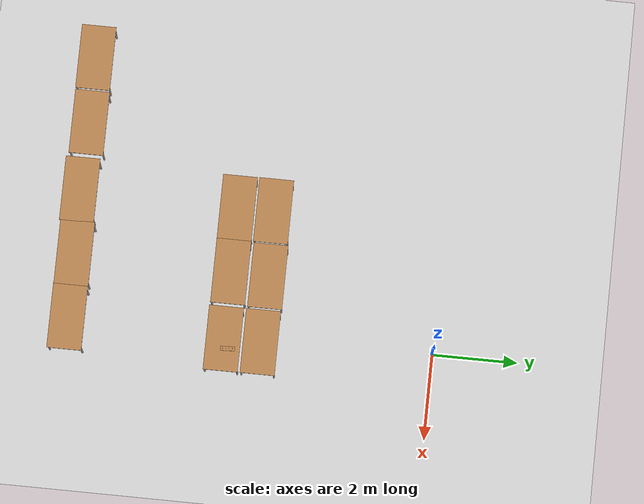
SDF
<sdf version="1.7">
 <world name="default">
  <model name="ground_plane">
   <static>1</static>
   <link name="link">
    <collision name="collision">
     <geometry><plane><normal>0 0 1</normal><size>100 100</size></plane></geometry>
     <surface>
      <contact><collide_bitmask>65535</collide_bitmask></contact>
      <friction><ode><mu>100</mu><mu2>50</mu2></ode></friction>
     </surface>
    </collision>
    <visual name="visual">
     <cast_shadows>0</cast_shadows>
     <geometry><plane><normal>0 0 1</normal><size>100 100</size></plane></geometry>
     <material>
      <script><uri>file://media/materials/scripts/gazebo.material</uri><name>Gazebo/Grey</name></script>
     </material>
    </visual>
   </link>
  </model>
  <model name="table_1">
   <static>1</static>
   <link name="link">
    <collision name="surface">
     <pose>0 0 1 0 -0 0</pose>
     <geometry><box><size>1.5 0.8 0.03</size></box></geometry>
     <surface><friction><ode><mu>0.6</mu><mu2>0.6</mu2></ode></friction></surface>
    </collision>
    <visual name="visual1">
     <pose>0 0 1 0 -0 0</pose>
     <geometry><box><size>1.5 0.8 0.03</size></box></geometry>
     <material>
      <script><uri>file://media/materials/scripts/gazebo.material</uri><name>Gazebo/Wood</name></script>
     </material>
    </visual>
    <collision name="front_left_leg">
     <pose>0.68 0.38 0.5 0 -0 0</pose>
     <geometry><cylinder><radius>0.02</radius><length>1</length></cylinder></geometry>
    </collision>
    <visual name="front_left_leg">
     <pose>0.68 0.38 0.5 0 -0 0</pose>
     <geometry><cylinder><radius>0.02</radius><length>1</length></cylinder></geometry>
     <material>
      <script><uri>file://media/materials/scripts/gazebo.material</uri><name>Gazebo/Grey</name></script>
     </material>
    </visual>
    <collision name="front_right_leg">
     <pose>0.68 -0.38 0.5 0 -0 0</pose>
     <geometry><cylinder><radius>0.02</radius><length>1</length></cylinder></geometry>
    </collision>
    <visual name="front_right_leg">
     <pose>0.68 -0.38 0.5 0 -0 0</pose>
     <geometry><cylinder><radius>0.02</radius><length>1</length></cylinder></geometry>
     <material>
      <script><uri>file://media/materials/scripts/gazebo.material</uri><name>Gazebo/Grey</name></script>
     </material>
    </visual>
    <collision name="back_right_leg">
     <pose>-0.68 -0.38 0.5 0 -0 0</pose>
     <geometry><cylinder><radius>0.02</radius><length>1</length></cylinder></geometry>
    </collision>
    <visual name="back_right_leg">
     <pose>-0.68 -0.38 0.5 0 -0 0</pose>
     <geometry><cylinder><radius>0.02</radius><length>1</length></cylinder></geometry>
     <material>
      <script><uri>file://media/materials/scripts/gazebo.material</uri><name>Gazebo/Grey</name></script>
     </material>
    </visual>
    <collision name="back_left_leg">
     <pose>-0.68 0.38 0.5 0 -0 0</pose>
     <geometry><cylinder><radius>0.02</radius><length>1</length></cylinder></geometry>
    </collision>
    <visual name="back_left_leg">
     <pose>-0.68 0.38 0.5 0 -0 0</pose>
     <geometry><cylinder><radius>0.02</radius><length>1</length></cylinder></geometry>
     <material>
      <script><uri>file://media/materials/scripts/gazebo.material</uri><name>Gazebo/Grey</name></script>
     </material>
    </visual>
   </link>
   <pose>0.208584 -3.97961 0 0 -0 0</pose>
  </model>
  <model name="table_2">
   <static>1</static>
   <link name="link">
    <collision name="surface">
     <pose>0 0 1 0 -0 0</pose>
     <geometry><box><size>1.5 0.8 0.03</size></box></geometry>
     <surface><friction><ode><mu>0.6</mu><mu2>0.6</mu2></ode></friction></surface>
    </collision>
    <visual name="visual1">
     <pose>0 0 1 0 -0 0</pose>
     <geometry><box><size>1.5 0.8 0.03</size></box></geometry>
     <material>
      <script><uri>file://media/materials/scripts/gazebo.material</uri><name>Gazebo/Wood</name></script>
     </material>
    </visual>
    <collision name="front_left_leg">
     <pose>0.68 0.38 0.5 0 -0 0</pose>
     <geometry><cylinder><radius>0.02</radius><length>1</length></cylinder></geometry>
    </collision>
    <visual name="front_left_leg">
     <pose>0.68 0.38 0.5 0 -0 0</pose>
     <geometry><cylinder><radius>0.02</radius><length>1</length></cylinder></geometry>
     <material>
      <script><uri>file://media/materials/scripts/gazebo.material</uri><name>Gazebo/Grey</name></script>
     </material>
    </visual>
    <collision name="front_right_leg">
     <pose>0.68 -0.38 0.5 0 -0 0</pose>
     <geometry><cylinder><radius>0.02</radius><length>1</length></cylinder></geometry>
    </collision>
    <visual name="front_right_leg">
     <pose>0.68 -0.38 0.5 0 -0 0</pose>
     <geometry><cylinder><radius>0.02</radius><length>1</length></cylinder></geometry>
     <material>
      <script><uri>file://media/materials/scripts/gazebo.material</uri><name>Gazebo/Grey</name></script>
     </material>
    </visual>
    <collision name="back_right_leg">
     <pose>-0.68 -0.38 0.5 0 -0 0</pose>
     <geometry><cylinder><radius>0.02</radius><length>1</length></cylinder></geometry>
    </collision>
    <visual name="back_right_leg">
     <pose>-0.68 -0.38 0.5 0 -0 0</pose>
     <geometry><cylinder><radius>0.02</radius><length>1</length></cylinder></geometry>
     <material>
      <script><uri>file://media/materials/scripts/gazebo.material</uri><name>Gazebo/Grey</name></script>
     </material>
    </visual>
    <collision name="back_left_leg">
     <pose>-0.68 0.38 0.5 0 -0 0</pose>
     <geometry><cylinder><radius>0.02</radius><length>1</length></cylinder></geometry>
    </collision>
    <visual name="back_left_leg">
     <pose>-0.68 0.38 0.5 0 -0 0</pose>
     <geometry><cylinder><radius>0.02</radius><length>1</length></cylinder></geometry>
     <material>
      <script><uri>file://media/materials/scripts/gazebo.material</uri><name>Gazebo/Grey</name></script>
     </material>
    </visual>
   </link>
   <pose>0.212852 -4.83597 0 0 -0 0</pose>
  </model>
  <model name="table_5">
   <static>1</static>
   <link name="link">
    <collision name="surface">
     <pose>0 0 1 0 -0 0</pose>
     <geometry><box><size>1.5 0.8 0.03</size></box></geometry>
     <surface><friction><ode><mu>0.6</mu><mu2>0.6</mu2></ode></friction></surface>
    </collision>
    <visual name="visual1">
     <pose>0 0 1 0 -0 0</pose>
     <geometry><box><size>1.5 0.8 0.03</size></box></geometry>
     <material>
      <script><uri>file://media/materials/scripts/gazebo.material</uri><name>Gazebo/Wood</name></script>
     </material>
    </visual>
    <collision name="front_left_leg">
     <pose>0.68 0.38 0.5 0 -0 0</pose>
     <geometry><cylinder><radius>0.02</radius><length>1</length></cylinder></geometry>
    </collision>
    <visual name="front_left_leg">
     <pose>0.68 0.38 0.5 0 -0 0</pose>
     <geometry><cylinder><radius>0.02</radius><length>1</length></cylinder></geometry>
     <material>
      <script><uri>file://media/materials/scripts/gazebo.material</uri><name>Gazebo/Grey</name></script>
     </material>
    </visual>
    <collision name="front_right_leg">
     <pose>0.68 -0.38 0.5 0 -0 0</pose>
     <geometry><cylinder><radius>0.02</radius><length>1</length></cylinder></geometry>
    </collision>
    <visual name="front_right_leg">
     <pose>0.68 -0.38 0.5 0 -0 0</pose>
     <geometry><cylinder><radius>0.02</radius><length>1</length></cylinder></geometry>
     <material>
      <script><uri>file://media/materials/scripts/gazebo.material</uri><name>Gazebo/Grey</name></script>
     </material>
    </visual>
    <collision name="back_right_leg">
     <pose>-0.68 -0.38 0.5 0 -0 0</pose>
     <geometry><cylinder><radius>0.02</radius><length>1</length></cylinder></geometry>
    </collision>
    <visual name="back_right_leg">
     <pose>-0.68 -0.38 0.5 0 -0 0</pose>
     <geometry><cylinder><radius>0.02</radius><length>1</length></cylinder></geometry>
     <material>
      <script><uri>file://media/materials/scripts/gazebo.material</uri><name>Gazebo/Grey</name></script>
     </material>
    </visual>
    <collision name="back_left_leg">
     <pose>-0.68 0.38 0.5 0 -0 0</pose>
     <geometry><cylinder><radius>0.02</radius><length>1</length></cylinder></geometry>
    </collision>
    <visual name="back_left_leg">
     <pose>-0.68 0.38 0.5 0 -0 0</pose>
     <geometry><cylinder><radius>0.02</radius><length>1</length></cylinder></geometry>
     <material>
      <script><uri>file://media/materials/scripts/gazebo.material</uri><name>Gazebo/Grey</name></script>
     </material>
    </visual>
   </link>
   <pose>0.063502 -8.46912 0 0 -0 0</pose>
  </model>
  <model name="table_6">
   <static>1</static>
   <link name="link">
    <collision name="surface">
     <pose>0 0 1 0 -0 0</pose>
     <geometry><box><size>1.5 0.8 0.03</size></box></geometry>
     <surface><friction><ode><mu>0.6</mu><mu2>0.6</mu2></ode></friction></surface>
    </collision>
    <visual name="visual1">
     <pose>0 0 1 0 -0 0</pose>
     <geometry><box><size>1.5 0.8 0.03</size></box></geometry>
     <material>
      <script><uri>file://media/materials/scripts/gazebo.material</uri><name>Gazebo/Wood</name></script>
     </material>
    </visual>
    <collision name="front_left_leg">
     <pose>0.68 0.38 0.5 0 -0 0</pose>
     <geometry><cylinder><radius>0.02</radius><length>1</length></cylinder></geometry>
    </collision>
    <visual name="front_left_leg">
     <pose>0.68 0.38 0.5 0 -0 0</pose>
     <geometry><cylinder><radius>0.02</radius><length>1</length></cylinder></geometry>
     <material>
      <script><uri>file://media/materials/scripts/gazebo.material</uri><name>Gazebo/Grey</name></script>
     </material>
    </visual>
    <collision name="front_right_leg">
     <pose>0.68 -0.38 0.5 0 -0 0</pose>
     <geometry><cylinder><radius>0.02</radius><length>1</length></cylinder></geometry>
    </collision>
    <visual name="front_right_leg">
     <pose>0.68 -0.38 0.5 0 -0 0</pose>
     <geometry><cylinder><radius>0.02</radius><length>1</length></cylinder></geometry>
     <material>
      <script><uri>file://media/materials/scripts/gazebo.material</uri><name>Gazebo/Grey</name></script>
     </material>
    </visual>
    <collision name="back_right_leg">
     <pose>-0.68 -0.38 0.5 0 -0 0</pose>
     <geometry><cylinder><radius>0.02</radius><length>1</length></cylinder></geometry>
    </collision>
    <visual name="back_right_leg">
     <pose>-0.68 -0.38 0.5 0 -0 0</pose>
     <geometry><cylinder><radius>0.02</radius><length>1</length></cylinder></geometry>
     <material>
      <script><uri>file://media/materials/scripts/gazebo.material</uri><name>Gazebo/Grey</name></script>
     </material>
    </visual>
    <collision name="back_left_leg">
     <pose>-0.68 0.38 0.5 0 -0 0</pose>
     <geometry><cylinder><radius>0.02</radius><length>1</length></cylinder></geometry>
    </collision>
    <visual name="back_left_leg">
     <pose>-0.68 0.38 0.5 0 -0 0</pose>
     <geometry><cylinder><radius>0.02</radius><length>1</length></cylinder></geometry>
     <material>
      <script><uri>file://media/materials/scripts/gazebo.material</uri><name>Gazebo/Grey</name></script>
     </material>
    </visual>
   </link>
   <pose>-1.4363 -8.46318 0 0 -0 0</pose>
  </model>
  <model name="table_7">
   <static>1</static>
   <link name="link">
    <collision name="surface">
     <pose>0 0 1 0 -0 0</pose>
     <geometry><box><size>1.5 0.8 0.03</size></box></geometry>
     <surface><friction><ode><mu>0.6</mu><mu2>0.6</mu2></ode></friction></surface>
    </collision>
    <visual name="visual1">
     <pose>0 0 1 0 -0 0</pose>
     <geometry><box><size>1.5 0.8 0.03</size></box></geometry>
     <material>
      <script><uri>file://media/materials/scripts/gazebo.material</uri><name>Gazebo/Wood</name></script>
     </material>
    </visual>
    <collision name="front_left_leg">
     <pose>0.68 0.38 0.5 0 -0 0</pose>
     <geometry><cylinder><radius>0.02</radius><length>1</length></cylinder></geometry>
    </collision>
    <visual name="front_left_leg">
     <pose>0.68 0.38 0.5 0 -0 0</pose>
     <geometry><cylinder><radius>0.02</radius><length>1</length></cylinder></geometry>
     <material>
      <script><uri>file://media/materials/scripts/gazebo.material</uri><name>Gazebo/Grey</name></script>
     </material>
    </visual>
    <collision name="front_right_leg">
     <pose>0.68 -0.38 0.5 0 -0 0</pose>
     <geometry><cylinder><radius>0.02</radius><length>1</length></cylinder></geometry>
    </collision>
    <visual name="front_right_leg">
     <pose>0.68 -0.38 0.5 0 -0 0</pose>
     <geometry><cylinder><radius>0.02</radius><length>1</length></cylinder></geometry>
     <material>
      <script><uri>file://media/materials/scripts/gazebo.material</uri><name>Gazebo/Grey</name></script>
     </material>
    </visual>
    <collision name="back_right_leg">
     <pose>-0.68 -0.38 0.5 0 -0 0</pose>
     <geometry><cylinder><radius>0.02</radius><length>1</length></cylinder></geometry>
    </collision>
    <visual name="back_right_leg">
     <pose>-0.68 -0.38 0.5 0 -0 0</pose>
     <geometry><cylinder><radius>0.02</radius><length>1</length></cylinder></geometry>
     <material>
      <script><uri>file://media/materials/scripts/gazebo.material</uri><name>Gazebo/Grey</name></script>
     </material>
    </visual>
    <collision name="back_left_leg">
     <pose>-0.68 0.38 0.5 0 -0 0</pose>
     <geometry><cylinder><radius>0.02</radius><length>1</length></cylinder></geometry>
    </collision>
    <visual name="back_left_leg">
     <pose>-0.68 0.38 0.5 0 -0 0</pose>
     <geometry><cylinder><radius>0.02</radius><length>1</length></cylinder></geometry>
     <material>
      <script><uri>file://media/materials/scripts/gazebo.material</uri><name>Gazebo/Grey</name></script>
     </material>
    </visual>
   </link>
   <pose>-2.92424 -8.49258 0 0 -0 0</pose>
  </model>
  <model name="table_8">
   <static>1</static>
   <link name="link">
    <collision name="surface">
     <pose>0 0 1 0 -0 0</pose>
     <geometry><box><size>1.5 0.8 0.03</size></box></geometry>
     <surface><friction><ode><mu>0.6</mu><mu2>0.6</mu2></ode></friction></surface>
    </collision>
    <visual name="visual1">
     <pose>0 0 1 0 -0 0</pose>
     <geometry><box><size>1.5 0.8 0.03</size></box></geometry>
     <material>
      <script><uri>file://media/materials/scripts/gazebo.material</uri><name>Gazebo/Wood</name></script>
     </material>
    </visual>
    <collision name="front_left_leg">
     <pose>0.68 0.38 0.5 0 -0 0</pose>
     <geometry><cylinder><radius>0.02</radius><length>1</length></cylinder></geometry>
    </collision>
    <visual name="front_left_leg">
     <pose>0.68 0.38 0.5 0 -0 0</pose>
     <geometry><cylinder><radius>0.02</radius><length>1</length></cylinder></geometry>
     <material>
      <script><uri>file://media/materials/scripts/gazebo.material</uri><name>Gazebo/Grey</name></script>
     </material>
    </visual>
    <collision name="front_right_leg">
     <pose>0.68 -0.38 0.5 0 -0 0</pose>
     <geometry><cylinder><radius>0.02</radius><length>1</length></cylinder></geometry>
    </collision>
    <visual name="front_right_leg">
     <pose>0.68 -0.38 0.5 0 -0 0</pose>
     <geometry><cylinder><radius>0.02</radius><length>1</length></cylinder></geometry>
     <material>
      <script><uri>file://media/materials/scripts/gazebo.material</uri><name>Gazebo/Grey</name></script>
     </material>
    </visual>
    <collision name="back_right_leg">
     <pose>-0.68 -0.38 0.5 0 -0 0</pose>
     <geometry><cylinder><radius>0.02</radius><length>1</length></cylinder></geometry>
    </collision>
    <visual name="back_right_leg">
     <pose>-0.68 -0.38 0.5 0 -0 0</pose>
     <geometry><cylinder><radius>0.02</radius><length>1</length></cylinder></geometry>
     <material>
      <script><uri>file://media/materials/scripts/gazebo.material</uri><name>Gazebo/Grey</name></script>
     </material>
    </visual>
    <collision name="back_left_leg">
     <pose>-0.68 0.38 0.5 0 -0 0</pose>
     <geometry><cylinder><radius>0.02</radius><length>1</length></cylinder></geometry>
    </collision>
    <visual name="back_left_leg">
     <pose>-0.68 0.38 0.5 0 -0 0</pose>
     <geometry><cylinder><radius>0.02</radius><length>1</length></cylinder></geometry>
     <material>
      <script><uri>file://media/materials/scripts/gazebo.material</uri><name>Gazebo/Grey</name></script>
     </material>
    </visual>
   </link>
   <pose>-4.50753 -8.4409 0 0 -0 0</pose>
  </model>
  <model name="table_9">
   <static>1</static>
   <link name="link">
    <collision name="surface">
     <pose>0 0 1 0 -0 0</pose>
     <geometry><box><size>1.5 0.8 0.03</size></box></geometry>
     <surface><friction><ode><mu>0.6</mu><mu2>0.6</mu2></ode></friction></surface>
    </collision>
    <visual name="visual1">
     <pose>0 0 1 0 -0 0</pose>
     <geometry><box><size>1.5 0.8 0.03</size></box></geometry>
     <material>
      <script><uri>file://media/materials/scripts/gazebo.material</uri><name>Gazebo/Wood</name></script>
     </material>
    </visual>
    <collision name="front_left_leg">
     <pose>0.68 0.38 0.5 0 -0 0</pose>
     <geometry><cylinder><radius>0.02</radius><length>1</length></cylinder></geometry>
    </collision>
    <visual name="front_left_leg">
     <pose>0.68 0.38 0.5 0 -0 0</pose>
     <geometry><cylinder><radius>0.02</radius><length>1</length></cylinder></geometry>
     <material>
      <script><uri>file://media/materials/scripts/gazebo.material</uri><name>Gazebo/Grey</name></script>
     </material>
    </visual>
    <collision name="front_right_leg">
     <pose>0.68 -0.38 0.5 0 -0 0</pose>
     <geometry><cylinder><radius>0.02</radius><length>1</length></cylinder></geometry>
    </collision>
    <visual name="front_right_leg">
     <pose>0.68 -0.38 0.5 0 -0 0</pose>
     <geometry><cylinder><radius>0.02</radius><length>1</length></cylinder></geometry>
     <material>
      <script><uri>file://media/materials/scripts/gazebo.material</uri><name>Gazebo/Grey</name></script>
     </material>
    </visual>
    <collision name="back_right_leg">
     <pose>-0.68 -0.38 0.5 0 -0 0</pose>
     <geometry><cylinder><radius>0.02</radius><length>1</length></cylinder></geometry>
    </collision>
    <visual name="back_right_leg">
     <pose>-0.68 -0.38 0.5 0 -0 0</pose>
     <geometry><cylinder><radius>0.02</radius><length>1</length></cylinder></geometry>
     <material>
      <script><uri>file://media/materials/scripts/gazebo.material</uri><name>Gazebo/Grey</name></script>
     </material>
    </visual>
    <collision name="back_left_leg">
     <pose>-0.68 0.38 0.5 0 -0 0</pose>
     <geometry><cylinder><radius>0.02</radius><length>1</length></cylinder></geometry>
    </collision>
    <visual name="back_left_leg">
     <pose>-0.68 0.38 0.5 0 -0 0</pose>
     <geometry><cylinder><radius>0.02</radius><length>1</length></cylinder></geometry>
     <material>
      <script><uri>file://media/materials/scripts/gazebo.material</uri><name>Gazebo/Grey</name></script>
     </material>
    </visual>
   </link>
   <pose>-1.35243 -4.82062 0 0 -0 0</pose>
  </model>
  <model name="table_10">
   <static>1</static>
   <link name="link">
    <collision name="surface">
     <pose>0 0 1 0 -0 0</pose>
     <geometry><box><size>1.5 0.8 0.03</size></box></geometry>
     <surface><friction><ode><mu>0.6</mu><mu2>0.6</mu2></ode></friction></surface>
    </collision>
    <visual name="visual1">
     <pose>0 0 1 0 -0 0</pose>
     <geometry><box><size>1.5 0.8 0.03</size></box></geometry>
     <material>
      <script><uri>file://media/materials/scripts/gazebo.material</uri><name>Gazebo/Wood</name></script>
     </material>
    </visual>
    <collision name="front_left_leg">
     <pose>0.68 0.38 0.5 0 -0 0</pose>
     <geometry><cylinder><radius>0.02</radius><length>1</length></cylinder></geometry>
    </collision>
    <visual name="front_left_leg">
     <pose>0.68 0.38 0.5 0 -0 0</pose>
     <geometry><cylinder><radius>0.02</radius><length>1</length></cylinder></geometry>
     <material>
      <script><uri>file://media/materials/scripts/gazebo.material</uri><name>Gazebo/Grey</name></script>
     </material>
    </visual>
    <collision name="front_right_leg">
     <pose>0.68 -0.38 0.5 0 -0 0</pose>
     <geometry><cylinder><radius>0.02</radius><length>1</length></cylinder></geometry>
    </collision>
    <visual name="front_right_leg">
     <pose>0.68 -0.38 0.5 0 -0 0</pose>
     <geometry><cylinder><radius>0.02</radius><length>1</length></cylinder></geometry>
     <material>
      <script><uri>file://media/materials/scripts/gazebo.material</uri><name>Gazebo/Grey</name></script>
     </material>
    </visual>
    <collision name="back_right_leg">
     <pose>-0.68 -0.38 0.5 0 -0 0</pose>
     <geometry><cylinder><radius>0.02</radius><length>1</length></cylinder></geometry>
    </collision>
    <visual name="back_right_leg">
     <pose>-0.68 -0.38 0.5 0 -0 0</pose>
     <geometry><cylinder><radius>0.02</radius><length>1</length></cylinder></geometry>
     <material>
      <script><uri>file://media/materials/scripts/gazebo.material</uri><name>Gazebo/Grey</name></script>
     </material>
    </visual>
    <collision name="back_left_leg">
     <pose>-0.68 0.38 0.5 0 -0 0</pose>
     <geometry><cylinder><radius>0.02</radius><length>1</length></cylinder></geometry>
    </collision>
    <visual name="back_left_leg">
     <pose>-0.68 0.38 0.5 0 -0 0</pose>
     <geometry><cylinder><radius>0.02</radius><length>1</length></cylinder></geometry>
     <material>
      <script><uri>file://media/materials/scripts/gazebo.material</uri><name>Gazebo/Grey</name></script>
     </material>
    </visual>
   </link>
   <pose>-1.33048 -3.9602 0 0 -0 0</pose>
  </model>
  <model name="table_11">
   <static>1</static>
   <link name="link">
    <collision name="surface">
     <pose>0 0 1 0 -0 0</pose>
     <geometry><box><size>1.5 0.8 0.03</size></box></geometry>
     <surface><friction><ode><mu>0.6</mu><mu2>0.6</mu2></ode></friction></surface>
    </collision>
    <visual name="visual1">
     <pose>0 0 1 0 -0 0</pose>
     <geometry><box><size>1.5 0.8 0.03</size></box></geometry>
     <material>
      <script><uri>file://media/materials/scripts/gazebo.material</uri><name>Gazebo/Wood</name></script>
     </material>
    </visual>
    <collision name="front_left_leg">
     <pose>0.68 0.38 0.5 0 -0 0</pose>
     <geometry><cylinder><radius>0.02</radius><length>1</length></cylinder></geometry>
    </collision>
    <visual name="front_left_leg">
     <pose>0.68 0.38 0.5 0 -0 0</pose>
     <geometry><cylinder><radius>0.02</radius><length>1</length></cylinder></geometry>
     <material>
      <script><uri>file://media/materials/scripts/gazebo.material</uri><name>Gazebo/Grey</name></script>
     </material>
    </visual>
    <collision name="front_right_leg">
     <pose>0.68 -0.38 0.5 0 -0 0</pose>
     <geometry><cylinder><radius>0.02</radius><length>1</length></cylinder></geometry>
    </collision>
    <visual name="front_right_leg">
     <pose>0.68 -0.38 0.5 0 -0 0</pose>
     <geometry><cylinder><radius>0.02</radius><length>1</length></cylinder></geometry>
     <material>
      <script><uri>file://media/materials/scripts/gazebo.material</uri><name>Gazebo/Grey</name></script>
     </material>
    </visual>
    <collision name="back_right_leg">
     <pose>-0.68 -0.38 0.5 0 -0 0</pose>
     <geometry><cylinder><radius>0.02</radius><length>1</length></cylinder></geometry>
    </collision>
    <visual name="back_right_leg">
     <pose>-0.68 -0.38 0.5 0 -0 0</pose>
     <geometry><cylinder><radius>0.02</radius><length>1</length></cylinder></geometry>
     <material>
      <script><uri>file://media/materials/scripts/gazebo.material</uri><name>Gazebo/Grey</name></script>
     </material>
    </visual>
    <collision name="back_left_leg">
     <pose>-0.68 0.38 0.5 0 -0 0</pose>
     <geometry><cylinder><radius>0.02</radius><length>1</length></cylinder></geometry>
    </collision>
    <visual name="back_left_leg">
     <pose>-0.68 0.38 0.5 0 -0 0</pose>
     <geometry><cylinder><radius>0.02</radius><length>1</length></cylinder></geometry>
     <material>
      <script><uri>file://media/materials/scripts/gazebo.material</uri><name>Gazebo/Grey</name></script>
     </material>
    </visual>
   </link>
   <pose>-2.8522 -4.82056 0 0 -0 0</pose>
  </model>
  <model name="table_12">
   <static>1</static>
   <link name="link">
    <collision name="surface">
     <pose>0 0 1 0 -0 0</pose>
     <geometry><box><size>1.5 0.8 0.03</size></box></geometry>
     <surface><friction><ode><mu>0.6</mu><mu2>0.6</mu2></ode></friction></surface>
    </collision>
    <visual name="visual1">
     <pose>0 0 1 0 -0 0</pose>
     <geometry><box><size>1.5 0.8 0.03</size></box></geometry>
     <material>
      <script><uri>file://media/materials/scripts/gazebo.material</uri><name>Gazebo/Wood</name></script>
     </material>
    </visual>
    <collision name="front_left_leg">
     <pose>0.68 0.38 0.5 0 -0 0</pose>
     <geometry><cylinder><radius>0.02</radius><length>1</length></cylinder></geometry>
    </collision>
    <visual name="front_left_leg">
     <pose>0.68 0.38 0.5 0 -0 0</pose>
     <geometry><cylinder><radius>0.02</radius><length>1</length></cylinder></geometry>
     <material>
      <script><uri>file://media/materials/scripts/gazebo.material</uri><name>Gazebo/Grey</name></script>
     </material>
    </visual>
    <collision name="front_right_leg">
     <pose>0.68 -0.38 0.5 0 -0 0</pose>
     <geometry><cylinder><radius>0.02</radius><length>1</length></cylinder></geometry>
    </collision>
    <visual name="front_right_leg">
     <pose>0.68 -0.38 0.5 0 -0 0</pose>
     <geometry><cylinder><radius>0.02</radius><length>1</length></cylinder></geometry>
     <material>
      <script><uri>file://media/materials/scripts/gazebo.material</uri><name>Gazebo/Grey</name></script>
     </material>
    </visual>
    <collision name="back_right_leg">
     <pose>-0.68 -0.38 0.5 0 -0 0</pose>
     <geometry><cylinder><radius>0.02</radius><length>1</length></cylinder></geometry>
    </collision>
    <visual name="back_right_leg">
     <pose>-0.68 -0.38 0.5 0 -0 0</pose>
     <geometry><cylinder><radius>0.02</radius><length>1</length></cylinder></geometry>
     <material>
      <script><uri>file://media/materials/scripts/gazebo.material</uri><name>Gazebo/Grey</name></script>
     </material>
    </visual>
    <collision name="back_left_leg">
     <pose>-0.68 0.38 0.5 0 -0 0</pose>
     <geometry><cylinder><radius>0.02</radius><length>1</length></cylinder></geometry>
    </collision>
    <visual name="back_left_leg">
     <pose>-0.68 0.38 0.5 0 -0 0</pose>
     <geometry><cylinder><radius>0.02</radius><length>1</length></cylinder></geometry>
     <material>
      <script><uri>file://media/materials/scripts/gazebo.material</uri><name>Gazebo/Grey</name></script>
     </material>
    </visual>
   </link>
   <pose>-2.85737 -3.97832 0 0 -0 0</pose>
  </model>
  <model name="table_13">
   <static>1</static>
   <link name="link">
    <collision name="surface">
     <pose>0 0 1 0 -0 0</pose>
     <geometry><box><size>1.5 0.8 0.03</size></box></geometry>
     <surface><friction><ode><mu>0.6</mu><mu2>0.6</mu2></ode></friction></surface>
    </collision>
    <visual name="visual1">
     <pose>0 0 1 0 -0 0</pose>
     <geometry><box><size>1.5 0.8 0.03</size></box></geometry>
     <material>
      <script><uri>file://media/materials/scripts/gazebo.material</uri><name>Gazebo/Wood</name></script>
     </material>
    </visual>
    <collision name="front_left_leg">
     <pose>0.68 0.38 0.5 0 -0 0</pose>
     <geometry><cylinder><radius>0.02</radius><length>1</length></cylinder></geometry>
    </collision>
    <visual name="front_left_leg">
     <pose>0.68 0.38 0.5 0 -0 0</pose>
     <geometry><cylinder><radius>0.02</radius><length>1</length></cylinder></geometry>
     <material>
      <script><uri>file://media/materials/scripts/gazebo.material</uri><name>Gazebo/Grey</name></script>
     </material>
    </visual>
    <collision name="front_right_leg">
     <pose>0.68 -0.38 0.5 0 -0 0</pose>
     <geometry><cylinder><radius>0.02</radius><length>1</length></cylinder></geometry>
    </collision>
    <visual name="front_right_leg">
     <pose>0.68 -0.38 0.5 0 -0 0</pose>
     <geometry><cylinder><radius>0.02</radius><length>1</length></cylinder></geometry>
     <material>
      <script><uri>file://media/materials/scripts/gazebo.material</uri><name>Gazebo/Grey</name></script>
     </material>
    </visual>
    <collision name="back_right_leg">
     <pose>-0.68 -0.38 0.5 0 -0 0</pose>
     <geometry><cylinder><radius>0.02</radius><length>1</length></cylinder></geometry>
    </collision>
    <visual name="back_right_leg">
     <pose>-0.68 -0.38 0.5 0 -0 0</pose>
     <geometry><cylinder><radius>0.02</radius><length>1</length></cylinder></geometry>
     <material>
      <script><uri>file://media/materials/scripts/gazebo.material</uri><name>Gazebo/Grey</name></script>
     </material>
    </visual>
    <collision name="back_left_leg">
     <pose>-0.68 0.38 0.5 0 -0 0</pose>
     <geometry><cylinder><radius>0.02</radius><length>1</length></cylinder></geometry>
    </collision>
    <visual name="back_left_leg">
     <pose>-0.68 0.38 0.5 0 -0 0</pose>
     <geometry><cylinder><radius>0.02</radius><length>1</length></cylinder></geometry>
     <material>
      <script><uri>file://media/materials/scripts/gazebo.material</uri><name>Gazebo/Grey</name></script>
     </material>
    </visual>
   </link>
   <pose>-6.04338 -8.44713 0 0 -0 0</pose>
  </model>
  <model name="wooden_peg_board">
   <frame name="wooden_board::__model__" attached_to="wooden_board::base">
    <pose relative_to="__model__">0 0 0 0 -0 0</pose>
   </frame>
   <link name="wooden_board::base">
    <pose relative_to="wooden_board::__model__">0 0 0.00523 0 -0 0</pose>
    <inertial>
     <mass>0.2765</mass>
     <inertia>
      <ixx>0.0025148</ixx>
      <ixy>0</ixy>
      <ixz>0</ixz>
      <iyy>0.00024037</iyy>
      <iyz>0</iyz>
      <izz>0.00275013</izz>
     </inertia>
    </inertial>
    <collision name="collision">
     <geometry><box><size>0.1016 0.3302 0.01046</size></box></geometry>
     <surface>
      <contact>
       <poissons_ratio>0.347</poissons_ratio>
       <elastic_modulus>8.8e+09</elastic_modulus>
       <ode><kp>100000</kp><kd>100</kd><max_vel>100</max_vel><min_depth>0.001</min_depth></ode>
      </contact>
      <friction>
       <torsional>
        <coefficient>1</coefficient>
        <use_patch_radius>0</use_patch_radius>
        <surface_radius>0.01</surface_radius>
       </torsional>
      </friction>
     </surface>
    </collision>
    <visual name="visual">
     <geometry><box><size>0.1016 0.3302 0.01046</size></box></geometry>
     <material>
      <script><uri>file://media/materials/scripts/gazebo.material</uri><name>Gazebo/Wood</name></script>
     </material>
    </visual>
    <visual name="tee_nut_1">
     <pose>0 -0.116 0 0 -0 0</pose>
     <geometry><cylinder><radius>0.00635</radius><length>0.0105646</length></cylinder></geometry>
     <material>
      <script><uri>file://media/materials/scripts/gazebo.material</uri><name>Gazebo/Grey</name></script>
     </material>
    </visual>
    <visual name="tee_nut_2">
     <pose>0 -0.038 0 0 -0 0</pose>
     <geometry><cylinder><radius>0.00635</radius><length>0.0105646</length></cylinder></geometry>
     <material>
      <script><uri>file://media/materials/scripts/gazebo.material</uri><name>Gazebo/Grey</name></script>
     </material>
    </visual>
    <visual name="tee_nut_3">
     <pose>0 0.038 0 0 -0 0</pose>
     <geometry><cylinder><radius>0.00635</radius><length>0.0105646</length></cylinder></geometry>
     <material>
      <script><uri>file://media/materials/scripts/gazebo.material</uri><name>Gazebo/Grey</name></script>
     </material>
    </visual>
    <visual name="tee_nut_4">
     <pose>0 0.116 0 0 -0 0</pose>
     <geometry><cylinder><radius>0.00635</radius><length>0.0105646</length></cylinder></geometry>
     <material>
      <script><uri>file://media/materials/scripts/gazebo.material</uri><name>Gazebo/Grey</name></script>
     </material>
    </visual>
   </link>
   <frame name="peg::__model__" attached_to="peg::link">
    <pose relative_to="__model__">0 0.116 0 0 -0 0</pose>
   </frame>
   <link name="peg::link">
    <pose relative_to="peg::__model__">0 0 0.04 0 -0 0</pose>
    <inertial>
     <mass>0.0175</mass>
     <inertia>
      <ixx>9.74923e-06</ixx>
      <ixy>0</ixy>
      <ixz>0</ixz>
      <iyy>9.74923e-06</iyy>
      <iyz>0</iyz>
      <izz>8.31797e-07</izz>
     </inertia>
    </inertial>
    <collision name="collision">
     <geometry><cylinder><radius>0.00975</radius><length>0.08</length></cylinder></geometry>
     <surface>
      <contact>
       <poissons_ratio>0.347</poissons_ratio>
       <elastic_modulus>8.8e+09</elastic_modulus>
       <ode><kp>100000</kp><kd>100</kd><max_vel>100</max_vel><min_depth>0.001</min_depth></ode>
      </contact>
      <friction>
       <torsional>
        <coefficient>1</coefficient>
        <use_patch_radius>0</use_patch_radius>
        <surface_radius>0.01</surface_radius>
       </torsional>
      </friction>
     </surface>
    </collision>
    <visual name="visual">
     <geometry><cylinder><radius>0.00975</radius><length>0.08</length></cylinder></geometry>
     <material>
      <script><uri>file://media/materials/scripts/gazebo.material</uri><name>Gazebo/Wood</name></script>
     </material>
    </visual>
   </link>
   <joint name="board_peg" type="revolute">
    <parent>wooden_board::base</parent>
    <child>peg::link</child>
    <axis>
     <xyz>0 0 1</xyz>
     <limit><upper>0</upper><lower>0</lower></limit>
     <dynamics><spring_reference>0</spring_reference><spring_stiffness>0</spring_stiffness></dynamics>
    </axis>
   </joint>
   <pose>0.435779 -4.71821 1.014 1.6e-05 2e-06 0.033191</pose>
  </model>
  <model name="wooden_peg">
   <link name="link">
    <pose>0 0 0.04 0 -0 0</pose>
    <inertial>
     <mass>0.0175</mass>
     <inertia>
      <ixx>9.74923e-06</ixx>
      <ixy>0</ixy>
      <ixz>0</ixz>
      <iyy>9.74923e-06</iyy>
      <iyz>0</iyz>
      <izz>8.31797e-07</izz>
     </inertia>
    </inertial>
    <collision name="collision">
     <geometry><cylinder><radius>0.00975</radius><length>0.08</length></cylinder></geometry>
     <surface>
      <contact>
       <poissons_ratio>0.347</poissons_ratio>
       <elastic_modulus>8.8e+09</elastic_modulus>
       <ode><kp>100000</kp><kd>100</kd><max_vel>100</max_vel><min_depth>0.001</min_depth></ode>
      </contact>
      <friction>
       <torsional>
        <coefficient>1</coefficient>
        <use_patch_radius>0</use_patch_radius>
        <surface_radius>0.01</surface_radius>
       </torsional>
      </friction>
     </surface>
    </collision>
    <visual name="visual">
     <geometry><cylinder><radius>0.00975</radius><length>0.08</length></cylinder></geometry>
     <material>
      <script><uri>file://media/materials/scripts/gazebo.material</uri><name>Gazebo/Wood</name></script>
     </material>
    </visual>
   </link>
  </model>
 </world>
</sdf>
